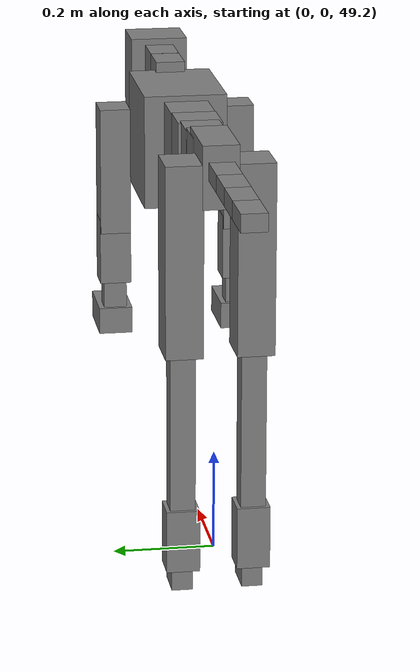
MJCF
<mujoco model="dog">

    <default>
        <joint armature="0.02" stiffness="1" damping="0.2" limited="true"/>
        <geom condim="3" friction="1 0.05 0.05" margin="0.01"/>
        <motor ctrllimited="true" ctrlrange="-1.0 1.0" forcelimited="true" gear="50"/>
    </default>

    <compiler inertiafromgeom="true" angle="radian"/>

    <option timestep="0.016" iterations="50" tolerance="1e-10" solver="Newton" jacobian="dense" cone="pyramidal"/>

    <size nconmax="20000" njmax="60000" nstack="5000000"/>
    <visual>
        <map force="0.1" zfar="30"/>
        <rgba haze="0.15 0.25 0.35 1"/>
        <quality shadowsize="2048"/>
        <global offwidth="800" offheight="800"/>
    </visual>

    <asset>
        <texture type="skybox" builtin="gradient" rgb1="0.3 0.5 0.7" rgb2="0 0 0" width="512" height="512"/>
        <texture name="texplane" type="2d" builtin="checker" rgb1=".2 .3 .4" rgb2=".1 0.15 0.2" width="512" height="512"
                 mark="cross" markrgb=".8 .8 .8"/>
        <texture name="texgeom" type="cube" builtin="flat" mark="cross" width="127" height="1278" rgb1="0.8 0.6 0.4"
                 rgb2="0.8 0.6 0.4" markrgb="1 1 1" random="0.01"/>

        <material name="matplane" reflectance="0.3" texture="texplane" texrepeat="1 1" texuniform="true"/>
        <material name="matgeom" texture="texgeom" texuniform="true" rgba="0.8 0.6 .4 1"/>
    </asset>

    <worldbody>
        <geom name="floor" pos="0 0 0" size="0 0 .25" type="plane" material="matplane" condim="3"/>

        <light directional="false" diffuse=".2 .2 .2" specular="0 0 0" pos="0 0 5" dir="0 0 -1" castshadow="false"/>
        <light mode="targetbodycom" target="torso" directional="false" diffuse=".8 .8 .8" specular="0.3 0.3 0.3"
               pos="0 0 4.0" dir="0 0 -1"/>

        <body name="root" pos="0 0 50">
            <freejoint name="root_1"/>
            <geom type="box" pos="0 0 -0.02" size="0.0774  0.0358  0.063" density="2030"/>

            <body name="spine1" pos="0.054 0 0">
                <joint name="spine1_y" axis="0 1 0" range="0 0.7" limited="true"/>
                <geom type="box" pos="0.02375 0 -0.03" size="0.04375  0.0375  0.05985" density="2030"/>

                <body name="spine2" pos="0.0612 0 0">
                    <joint name="spine2_y" axis="0 1 0" range="-0.15 0.15" limited="true"/>
                    <geom type="box" pos="0.03555  0  -0.04" size="0.04055  0.039  0.06615" density="2030"/>

                    <body name="spine3" pos="0.0730 0 0">
                        <joint name="spine3_y" axis="0 1 0" range="-0.15 0.15" limited="true"/>
                        <geom type="box" pos="0.03555  0  -0.057" size="0.04555  0.0445  0.081" density="2030"/>

                        <body name="spine4" pos="0.0780 0 0">
                            <joint name="spine4_y" axis="0 1 0" range="-0.15 0.15" limited="true"/>
                            <geom type="box" pos="0.05265  0  -0.07" size="0.05265  0.045  0.09135" density="2030"/>

                            <body name="torso" pos="0.1082 0 0">
                                <joint name="torso_y" axis="0 1 0" range="-0.15 0.15" limited="true"/>
                                <geom type="box" pos="0.11925  0  -0.085" size="0.11925  0.085  0.11745"
                                      density="2030"/>

                                <body name="neck1" pos="0.2160  0   0.0180">
                                    <joint name="neck1_y" axis="0 1 0" range="-1.2  -1" limited="true"/>
                                    <geom type="box" pos="0.0423  0  0" size="0.0423  0.03  0.036" density="2325"/>

                                    <body name="neck2" pos="0.0853  0  0">
                                        <joint name="neck2_y" axis="0 1 0" range="0.1  0" limited="true"/>
                                        <geom type="box" pos="0.0423  0  0" size="0.0423  0.03  0.036" density="2325"/>

                                        <body name="head" pos="0.0853  0  0">
                                            <joint name="head_y" axis="0 1 0" range="-0.3  -0.2" limited="true"/>
                                            <geom type="box" pos="0.0531  0  -0.055" size="0.0531  0.06  0.1044"
                                                  density="4030"/>

                                        </body>
                                    </body>
                                </body>

                                <body name="front_shoulder" pos="0.156  0   -0.0480">
                                    <joint name="front_shoulder_y" axis="0 1 0" range="-1 1.5" limited="true"/>
                                    <geom type="box" pos="0 0.13 -0.1063" size="0.0368  0.0314  0.1329" density="1158"/>
                                    <geom type="box" pos="0 -0.13 -0.1063" size="0.0368  0.0314  0.1329"
                                          density="1158"/>

                                    <body name="front_elbow" pos="0  0  -0.2126">
                                        <joint name="front_elbow_y" axis="0 1 0" range="-2 0" limited="true"/>
                                        <geom type="box" pos="0 0.13 -0.0684" size="0.0315  0.0323  0.0684"
                                              density="1081"/>
                                        <geom type="box" pos="0 -0.13 -0.0684" size="0.0315  0.0323  0.0684"
                                              density="1081"/>

                                        <body name="front_wrist" pos="0  0  -0.1368">
                                            <joint name="front_wrist_y" axis="0 1 0" range="-0.2 0" limited="true"/>
                                            <geom type="box" pos="0 0.13 -0.0355" size="0.0213  0.0237  0.0487"
                                                  density="1664"/>
                                            <geom type="box" pos="0 -0.13 -0.0355" size="0.0213  0.0237  0.0487"
                                                  density="1664"/>

                                            <body name="front_finger_end" pos="0  0  -0.0710">
                                                <joint name="front_finger_y" axis="0 1 0" range="-0.4 1"
                                                       limited="true"/>
                                                <geom type="box" pos="0.0349  0.13  -0.0127"
                                                      size="0.0639  0.0349  0.0277" density="1515"/>
                                                <geom type="box" pos="0.0349  -0.13  -0.0127"
                                                      size="0.0639  0.0349  0.0277" density="1515"/>

                                            </body>

                                        </body>
                                    </body>
                                </body>

                            </body>
                        </body>
                    </body>
                </body>
            </body>

            <body name="back_hip" pos="-0.03 0 -0.018">
                <joint name="back_hip_y" axis="0 1 0" range="-1.5 0.3" limited="true"/>
                <geom type="box" pos="0 0.07 -0.1694" size="0.0473  0.0371  0.1922" density="1154"/>
                <geom type="box" pos="0 -0.07 -0.1694" size="0.0473  0.0371  0.1922" density="1154"/>

                <body name="back_knee" pos="0  0  -0.3388">
                    <joint name="back_knee_y" axis="0 1 0" range="0 2.8" limited="true"/>
                    <geom type="box" pos="0 0.07 -0.1765" size="0.0253  0.0249  0.1921" density="1227"/>
                    <geom type="box" pos="0 -0.07 -0.1765" size="0.0253  0.0249  0.1921" density="1227"/>

                    <body name="back_ankle" pos="0  0  -0.3530">
                        <joint name="back_ankle_y" axis="0 1 0" range="-2.2 0" limited="true"/>
                        <geom type="box" pos="0 0.07 -0.0521" size="0.0330  0.0330  0.0633" density="1284"/>
                        <geom type="box" pos="0 -0.07 -0.0521" size="0.0330  0.0330  0.0633" density="1284"/>

                        <body name="back_toe_end" pos="0  0  -0.1042">
                            <joint name="back_toe_y" axis="0 1 0" range="-0.4 1" limited="true"/>
                            <geom type="box" pos="0.0206  0.07  -0.0206" size="0.0377  0.0206  0.0356" density="1515"/>
                            <geom type="box" pos="0.0206  -0.07  -0.0206" size="0.0377  0.0206  0.0356" density="1515"/>

                        </body>
                    </body>
                </body>
            </body>

            <body name="tail1" pos="-0.074 0 -0.006">
                <joint name="tail1_y" axis="0 1 0" range="-0.2 0.2" limited="true"/>
                <geom type="box" pos="-0.0536  0  0" size="0.045  0.025  0.0175" density="1587"/>

                <body name="tail2" pos="-0.09 0 0">
                    <joint name="tail2_y" axis="0 1 0" range="-0.2 0.2" limited="true"/>
                    <geom type="box" pos="-0.0536  0  0" size="0.045  0.025  0.0175" density="1587"/>

                    <body name="tail3" pos="-0.09 0 0">
                        <joint name="tail3_y" axis="0 1 0" range="-0.2 0.2" limited="true"/>
                        <geom type="box" pos="-0.0536  0  0" size="0.045  0.025  0.0175" density="1587"/>

                        <body name="tail4" pos="-0.09 0 0">
                            <joint name="tail4_y" axis="0 1 0" range="-0.2 0.2" limited="true"/>
                            <geom type="box" pos="-0.0536  0  0" size="0.045  0.025  0.0175" density="1587"/>

                        </body>
                    </body>
                </body>
            </body>
        </body>
    </worldbody>

    <actuator>
        <motor joint="spine1_y" forcerange="-150 150     "/>
        <motor joint="spine2_y" forcerange="-150 150     "/>
        <motor joint="spine3_y" forcerange="-150 150     "/>
        <motor joint="spine4_y" forcerange="-150 150     "/>
        <motor joint="torso_y" forcerange="-150 150     "/>
        <motor joint="neck1_y" forcerange="-100 100       "/>
        <motor joint="neck2_y" forcerange="-100 100       "/>
        <motor joint="head_y" forcerange="-150 150       "/>
        <motor joint="front_shoulder_y" forcerange="-143.30 166.18"/>
        <motor joint="front_elbow_y" forcerange="-136.87 197.68"/>
        <motor joint="front_wrist_y" forcerange="-123.05 66.17"/>
        <motor joint="front_finger_y" forcerange="-91.51 54.47"/>
        <motor joint="back_hip_y" forcerange="-301.05 393.68"/>
        <motor joint="back_knee_y" forcerange="-222.44 340.41"/>
        <motor joint="back_angle_y" forcerange="-182.22 245.56"/>
        <motor joint="back_toe_y" forcerange="-32.86 51.70"/>
        <motor joint="tail1_y" forcerange="-50 50     "/>
        <motor joint="tail2_y" forcerange="-50 50     "/>
        <motor joint="tail3_y" forcerange="-50 50     "/>
        <motor joint="tail4_y" forcerange="-50 50     "/>
    </actuator>
</mujoco>
